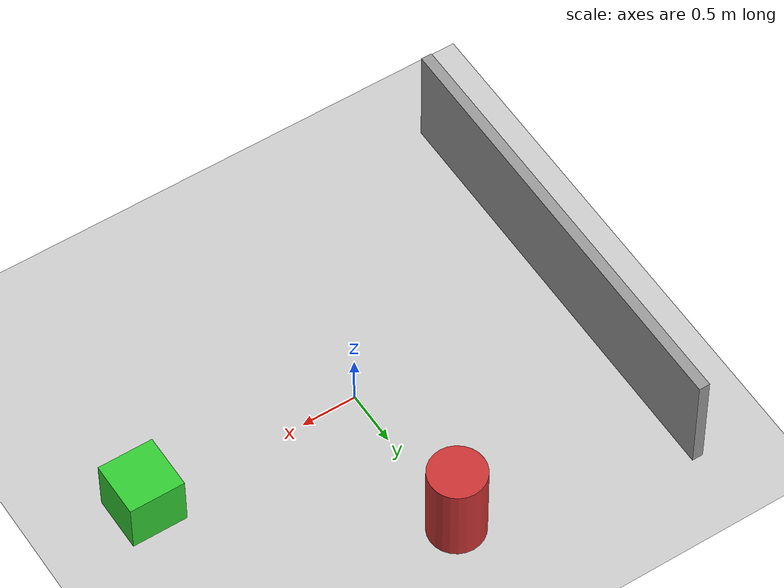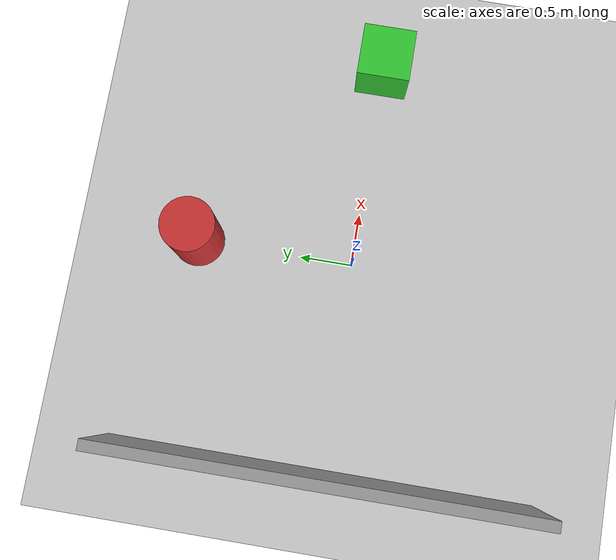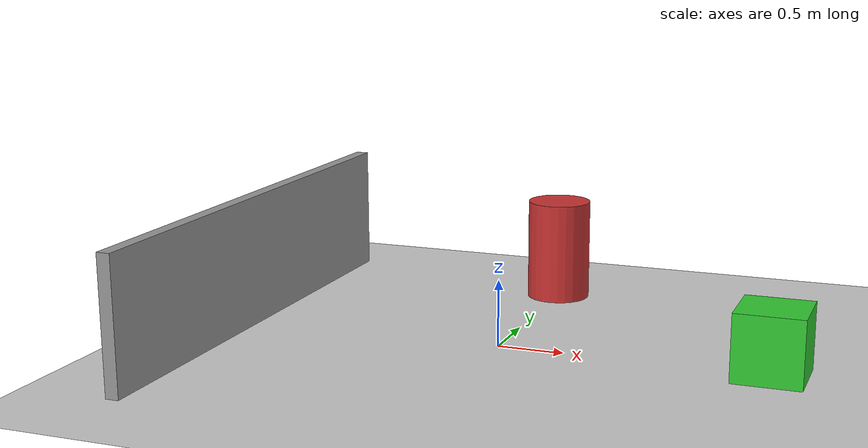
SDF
<?xml version="1.0" ?>
<sdf version="1.6">
  <world name="my_world">

    <physics type="ode">
      <max_step_size>0.004</max_step_size>
      <real_time_update_factor>1.0</real_time_update_factor>
      <real_time_update_rate>250</real_time_update_rate>
    </physics>

    <!-- 光照：不写的话 Gazebo 里一片漆黑 -->
    <include>
      <uri>model://sun</uri>
    </include>

    <!-- 地面 -->
    <include>
      <uri>model://ground_plane</uri>
    </include>

    <!-- ============ 障碍物 1：正前方的绿色方块 ============ -->
    <model name="box_front">
      <static>true</static>
      <pose>2.0 0 0.25 0 0 0</pose>
      <link name="link">
        <collision name="col">
          <geometry><box><size>0.5 0.5 0.5</size></box></geometry>
        </collision>
        <visual name="vis">
          <geometry><box><size>0.5 0.5 0.5</size></box></geometry>
          <material>
            <ambient>0.2 0.8 0.2 1</ambient>
            <diffuse>0.2 0.8 0.2 1</diffuse>
          </material>
        </visual>
      </link>
    </model>

    <!-- ============ 障碍物 2：左侧的红色圆柱 ============ -->
    <model name="cyl_left">
      <static>true</static>
      <pose>0 1.5 0.4 0 0 0</pose>
      <link name="link">
        <collision name="col">
          <geometry><cylinder><radius>0.25</radius><length>0.8</length></cylinder></geometry>
        </collision>
        <visual name="vis">
          <geometry><cylinder><radius>0.25</radius><length>0.8</length></cylinder></geometry>
          <material>
            <ambient>0.8 0.2 0.2 1</ambient>
            <diffuse>0.8 0.2 0.2 1</diffuse>
          </material>
        </visual>
      </link>
    </model>

    <!-- ============ 障碍物 3：后面的一堵墙 ============ -->
    <model name="wall_back">
      <static>true</static>
      <pose>-2.0 0 0.5 0 0 0</pose>
      <link name="link">
        <collision name="col">
          <geometry><box><size>0.1 4.0 1.0</size></box></geometry>
        </collision>
        <visual name="vis">
          <geometry><box><size>0.1 4.0 1.0</size></box></geometry>
          <material>
            <ambient>0.6 0.6 0.6 1</ambient>
            <diffuse>0.6 0.6 0.6 1</diffuse>
          </material>
        </visual>
      </link>
    </model>

  </world>
</sdf>
